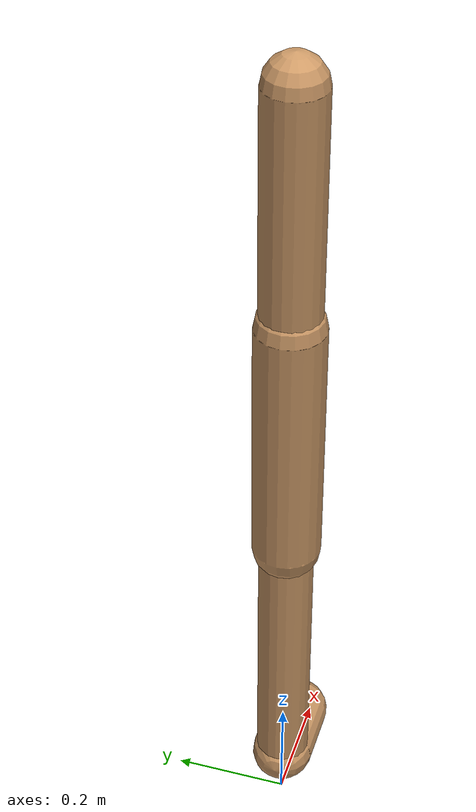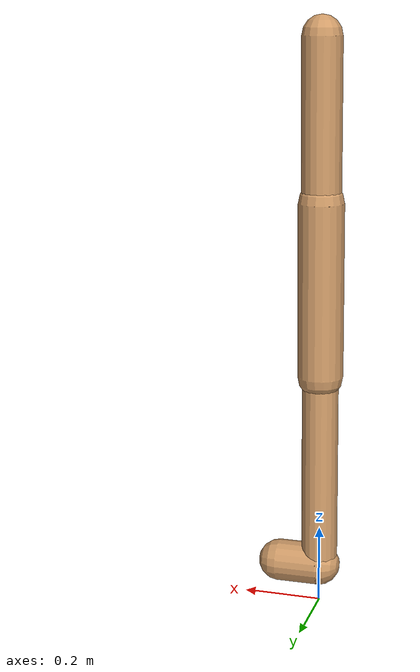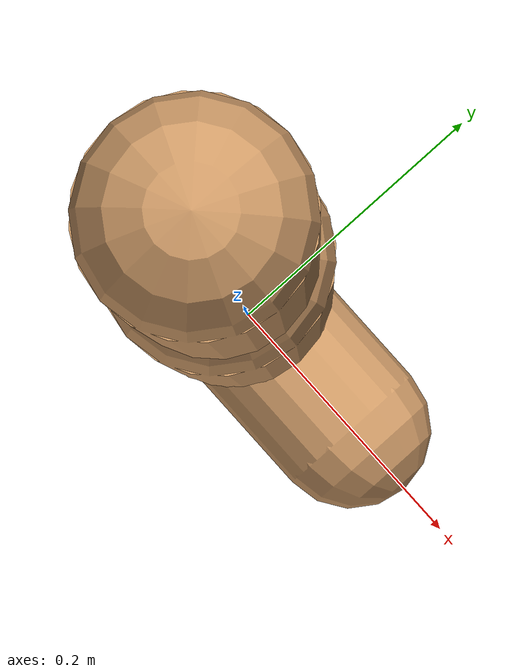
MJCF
<mujoco model="walker2d">
  <compiler angle="degree" coordinate="global" inertiafromgeom="true" />
  <default>
    <joint armature="0.01" damping=".1" limited="true" />
    <geom conaffinity="0" condim="3" contype="1" density="1000" friction="0.8 .1 .1" rgba="0.8 0.6 .4 1" />
  </default>
  <option integrator="RK4" timestep="0.002" />
  <worldbody>

    <body name="torso" pos="0 0 -0.022293489545589983">
      <joint armature="0" axis="1 0 0" damping="0" limited="false" name="ignorex" pos="0 0 0" stiffness="0" type="slide" />
      <joint armature="0" axis="0 0 1" damping="0" limited="false" name="ignorez" pos="0 0 0" ref="1.25" stiffness="0" type="slide" />
      <joint armature="0" axis="0 1 0" damping="0" limited="false" name="ignorey" pos="0 0 0" stiffness="0" type="hinge" />
      <geom fromto="0 0 1.45 0 0 1.05" name="torso_geom" size="0.05003743848269063" type="capsule" />
      <body name="thigh">
        <joint axis="0 -1 0" name="thigh_joint" pos="0 0 1.05" range="-150 0" type="hinge" />
        <geom fromto="0.0 0.0 1.05 0.0 0.0 0.6105600739952795" name="thigh_geom" size="0.057659656287164684" type="capsule" />
        <body name="leg" pos="0.0 0.0 0.010560073995279473">
          <joint axis="0 -1 0" name="leg_joint" pos="0 0 0.6" range="-150 0" type="hinge" />
          <geom fromto="0.0 0.0 0.6 0.0 0.0 0.11173341555031052" name="leg_geom" size="0.046127725029731746" type="capsule" />
          <body name="foot" pos="0.0 0.0 0.011733415550310516">
            <joint axis="0 -1 0" name="foot_joint" pos="0 0 0.1" range="-45 45" type="hinge" />
            <geom fromto="0.0 0.0 0.1 0.10724762558309822 0.0 0.1" name="foot_geom" size="0.05378547513980903" type="capsule" />
          </body>
        </body>
      </body>

      <body name="thigh_left">
        <joint axis="0 -1 0" name="thigh_left_joint" pos="0 0 1.05" range="-150 0" type="hinge" />
        <geom fromto="0.0 0.0 1.05 0.0 0.0 0.6105600739952795" name="thigh_left_geom" rgba=".7 .3 .6 1" size="0.057659656287164684" type="capsule" />
        <body name="leg_left" pos="0.0 0.0 0.010560073995279473">
          <joint axis="0 -1 0" name="leg_left_joint" pos="0 0 0.6" range="-150 0" type="hinge" />
          <geom fromto="0.0 0.0 0.6 0.0 0.0 0.11173341555031052" name="leg_left_geom" rgba=".7 .3 .6 1" size="0.046127725029731746" type="capsule" />
          <body name="foot_left" pos="0.0 0.0 0.011733415550310516">
            <joint axis="0 -1 0" name="foot_left_joint" pos="0 0 0.1" range="-45 45" type="hinge" />
            <geom fromto="0.0 0.0 0.1 0.10724762558309822 0.0 0.1" name="foot_left_geom" rgba=".7 .3 .6 1" size="0.05378547513980903" type="capsule" />
          </body>
        </body>
      </body>
    </body>
  </worldbody>
  <actuator>

    <motor ctrllimited="true" ctrlrange="-1.0 1.0" gear="100" joint="thigh_joint" />
    <motor ctrllimited="true" ctrlrange="-1.0 1.0" gear="100" joint="leg_joint" />
    <motor ctrllimited="true" ctrlrange="-1.0 1.0" gear="100" joint="foot_joint" />
    <motor ctrllimited="true" ctrlrange="-1.0 1.0" gear="100" joint="thigh_left_joint" />
    <motor ctrllimited="true" ctrlrange="-1.0 1.0" gear="100" joint="leg_left_joint" />
    <motor ctrllimited="true" ctrlrange="-1.0 1.0" gear="100" joint="foot_left_joint" />

  </actuator>
</mujoco>
